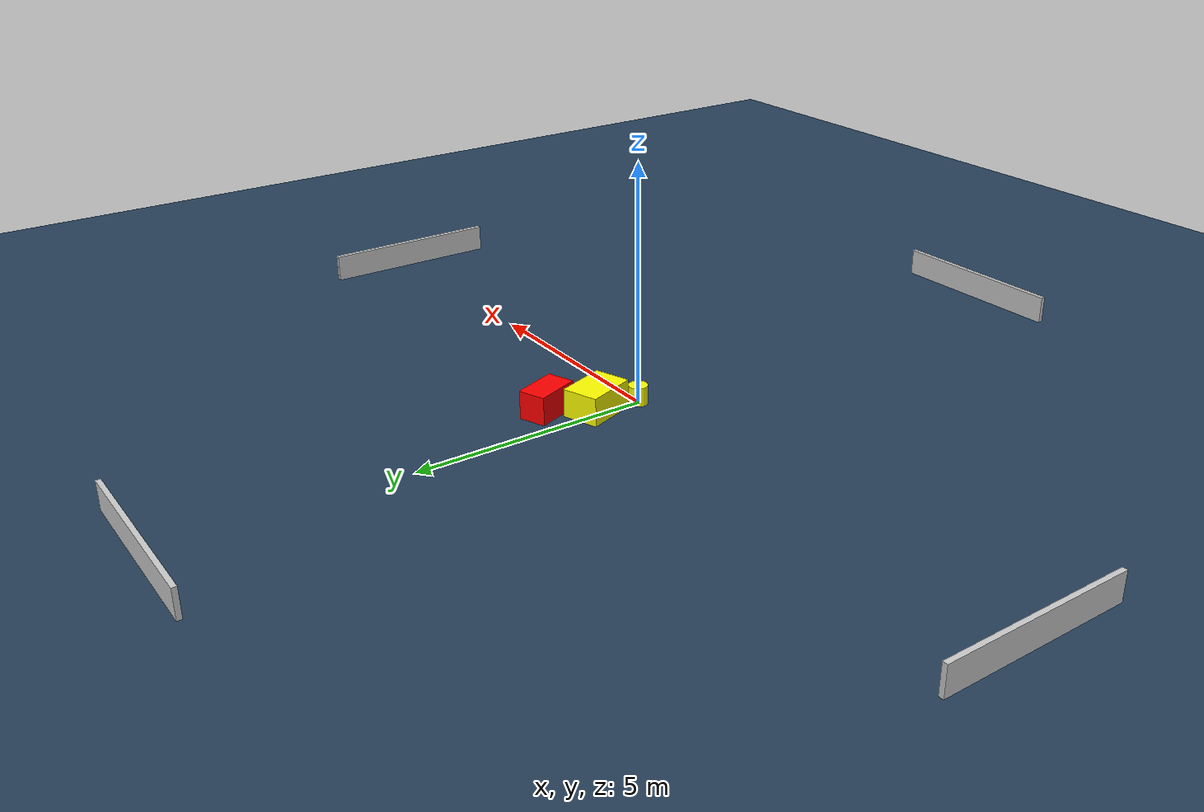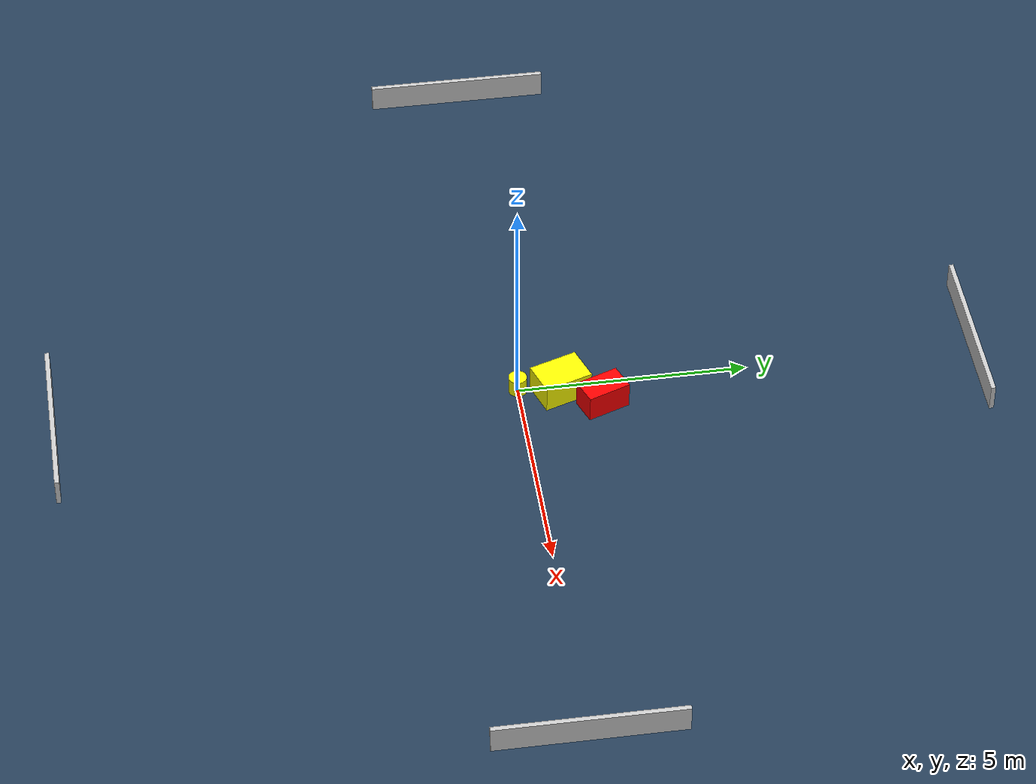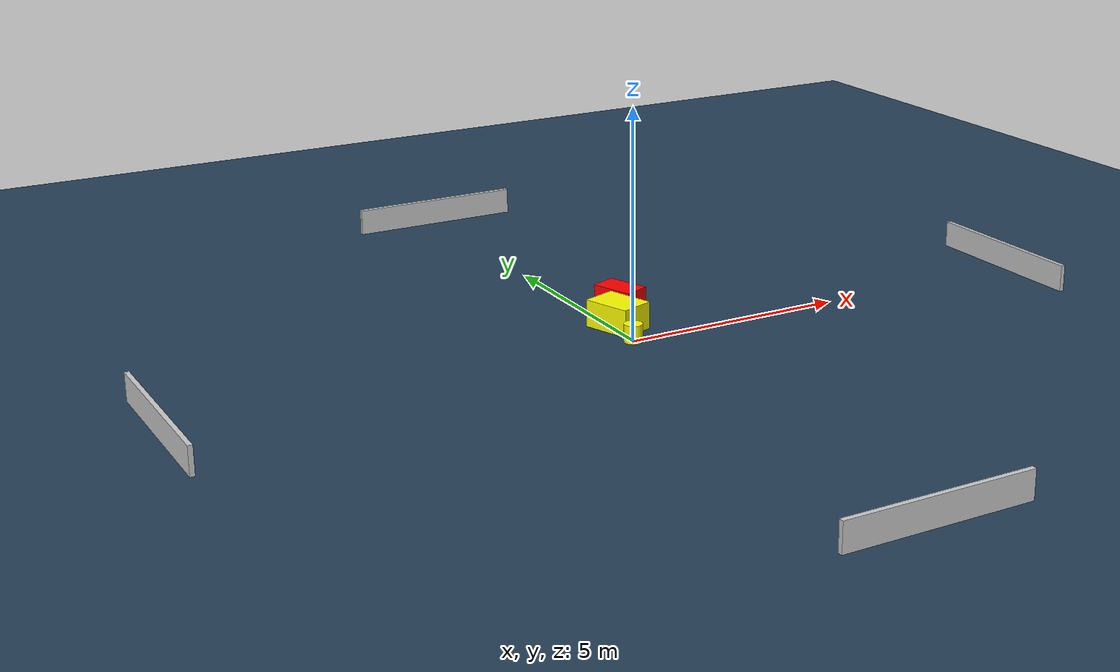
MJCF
<?xml version="1.0" ?>
<mujoco model="generated_environment">
  <option timestep="0.01" integrator="RK4" cone="elliptic"/>
  <default>
    <geom density="1"/>
  </default>
  <asset>
    <texture builtin="gradient" height="3072" name="skybox" rgb1="0.3 0.5 0.7" rgb2="0 0 0" type="skybox" width="512"/>
    <texture builtin="checker" height="300" name="groundplane" rgb1="0.2 0.3 0.4" rgb2="0.1 0.2 0.3" type="2d" width="300"/>
    <material name="groundplane" reflectance="0.2" texrepeat="5 5" texture="groundplane"/>
  </asset>
  <worldbody>
    <light dir="0 0 -1" directional="true" pos="0 0 1.5"/>
    <geom condim="3" friction="0.5 0.005 0.001" material="groundplane" name="floor" pos="0 0 0" size="0 0 0.05" type="plane"/>
    <body name="walls">
      <geom name="wall_1" condim="4" pos="-10.0 0.0 0.3" rgba="0.800000011920929 0.800000011920929 0.800000011920929 1.0" size="0.05 2.0 0.3" type="box"/>
      <geom name="wall_2" condim="4" pos="10.0 0.0 0.3" rgba="0.800000011920929 0.800000011920929 0.800000011920929 1.0" size="0.05 2.0 0.3" type="box"/>
      <geom name="wall_3" condim="4" pos="0.0 -10.0 0.3" rgba="0.800000011920929 0.800000011920929 0.800000011920929 1.0" size="2.0 0.05 0.3" type="box"/>
      <geom name="wall_4" condim="4" pos="0.0 10.0 0.3" rgba="0.800000011920929 0.800000011920929 0.800000011920929 1.0" size="2.0 0.05 0.3" type="box"/>
    </body>
    <body name="robot">
      <joint name="joint_x" type="slide" pos="0 0 0" axis="1 0 0"/>
      <joint name="joint_y" type="slide" pos="0 0 0" axis="0 1 0"/>
      <geom name="robot" type="cylinder" pos="0.0 0.0 0.2" size="0.2 0.2 0.0" mass="5.0" friction="1.0 0.005 0.0001" condim="4" rgba="1.0 1.0 0.0 1.0"/>
    </body>
    <body name="obstacle_1_movable">
      <geom name="obstacle_1_movable" condim="4" pos="0.15485588249860774 0.9133703430987704 0.3" euler="0 0 199.11502286939702" friction="0.0 0.005 0.001" rgba="1.0 1.0 0.0 1.0" size="0.3921995646624397 0.5458276369411545 0.3" type="box" mass="0.1"/>
      <joint type="free"/>
    </body>
    <body name="obstacle_2_static">
      <geom name="obstacle_2_static" condim="4" pos="0.678696907925015 1.7491403082742225 0.3" euler="0 0 110.7611531442665" friction="0.0 0.005 0.001" rgba="1.0 0.0 0.0 1.0" size="0.4851458627631963 0.2961315311285782 0.3" type="box"/>
    </body>
  </worldbody>
  <actuator>
    <motor name="actuator_x" joint="joint_x" gear="1" ctrlrange="-1 1"/>
    <motor name="actuator_y" joint="joint_y" gear="1" ctrlrange="-1 1"/>
  </actuator>
</mujoco>
